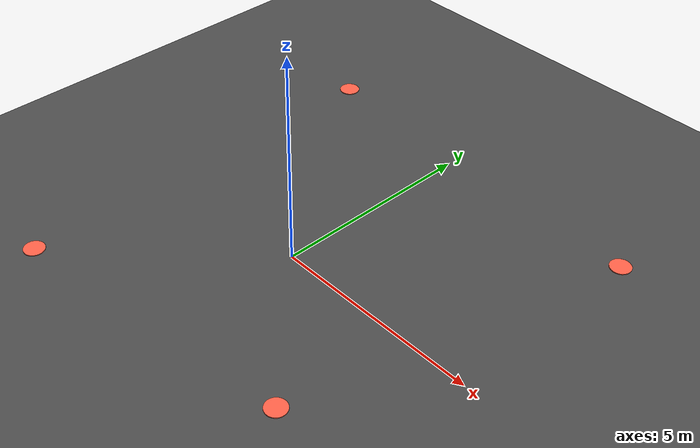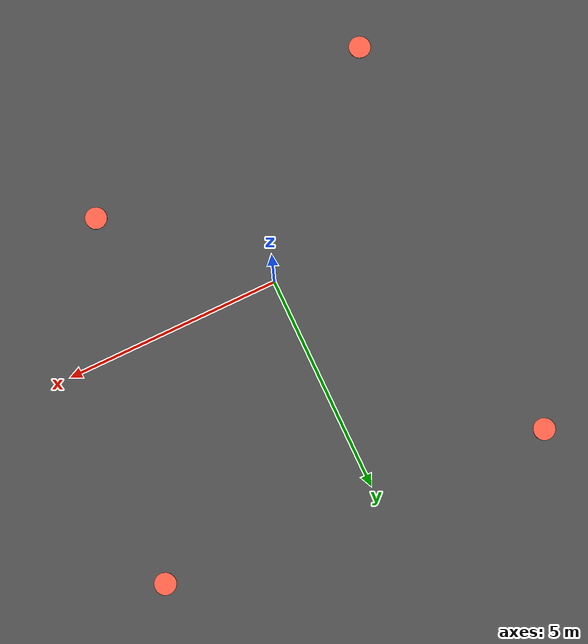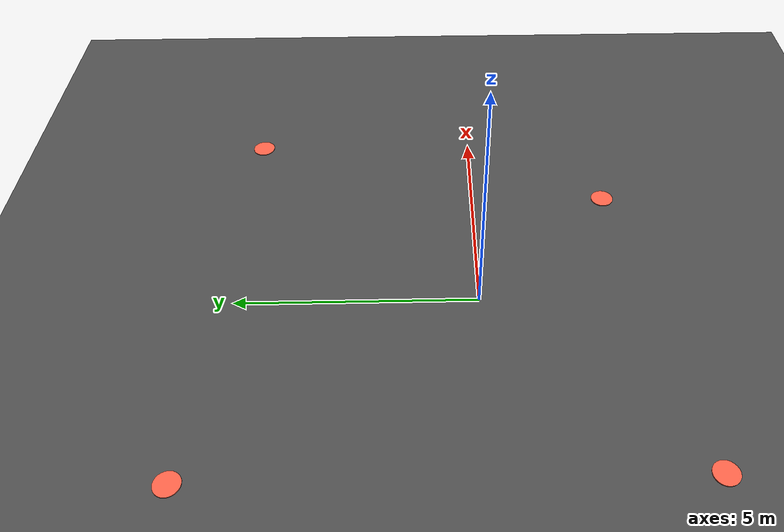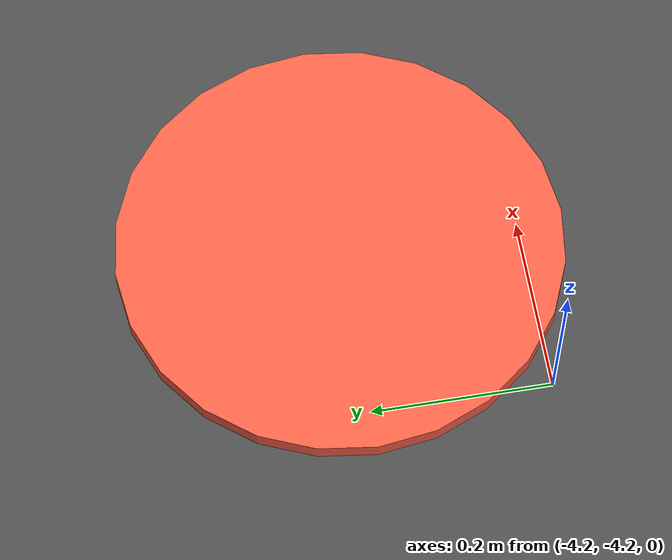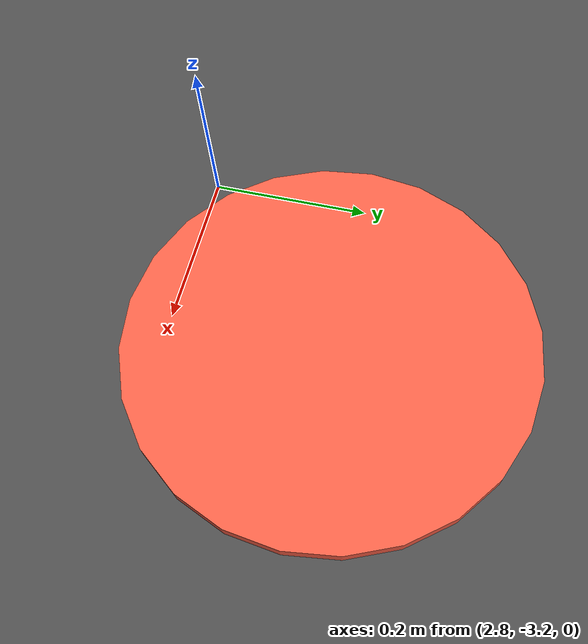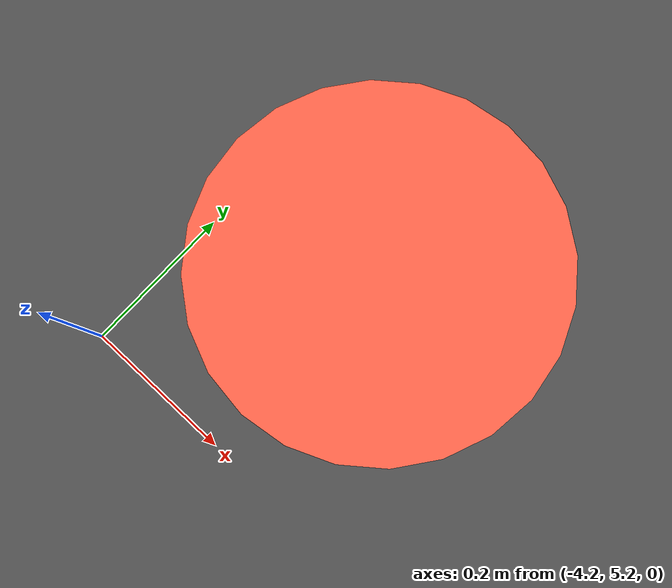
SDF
<?xml version="1.0" ?>
<sdf version='1.4'>
  <world name='default'>

    <physics type='ode'>
      <max_step_size>0.001</max_step_size>
      <real_time_factor>1</real_time_factor>
      <real_time_update_rate>1000</real_time_update_rate>
      <gravity>0 0 -9.8</gravity>
    </physics>

    <spherical_coordinates>
      <surface_model>EARTH_WGS84</surface_model>
      <latitude_deg>0</latitude_deg>
      <longitude_deg>0</longitude_deg>
      <elevation>0</elevation>
      <heading_deg>0</heading_deg>
    </spherical_coordinates>

    <!-- A global light source -->
   <scene>
      <sky>
        <clouds>
          <speed>12</speed>
        </clouds>
      </sky>
   </scene>

   <include>
     <uri>model://sun</uri>
   </include>

  <model name="ground_plane">
    <static>true</static>
    <link name="link">
      <collision name="collision">
        <geometry>
          <plane>
            <normal>0 0 1</normal>
            <size>100 100</size>
          </plane>
        </geometry>
        <surface>
          <friction>
            <ode>
              <mu>100</mu>
              <mu2>50</mu2>
            </ode>
          </friction>
        </surface>
      </collision>
      <visual name="visual">
        <cast_shadows>false</cast_shadows>
        <geometry>
          <plane>
            <normal>0 0 1</normal>
            <size>100 100</size>
          </plane>
        </geometry>
        <material>
          <script>
            <uri>model://asphalt_plane/materials/scripts</uri>
            <uri>model://asphalt_plane/materials/textures</uri>
            <name>vrc/asphalt</name>
          </script>
        </material>
      </visual>
    </link>
  </model>
   <!-- fire location 1 -->
    <model name="fire1" >
      <pose>5 5 0 0 0 0</pose>
      <include>
        <uri>model://virtual_fire</uri>
      </include>
    </model>

    <model name="fire2" >
      <pose>-4 5.5 0 0 0 0</pose>
      <include>
        <uri>model://virtual_fire</uri>
      </include>
    </model>

    <model name="fire3" >
      <pose>3 -3 0 0 0 0</pose>
      <include>
        <uri>model://virtual_fire</uri>
      </include>
    </model>

    <model name="fire4" >
      <pose>-4 -4 0 0 0 0</pose>
      <include>
        <uri>model://virtual_fire</uri>
      </include>
    </model>

  </world>
</sdf>

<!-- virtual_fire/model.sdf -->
<sdf version='1.4'>
  <model name="virtual_fire">
    <link name="link" >
      <pose>0 0 0.01 0 0 0</pose>
      <inertial>
        <mass>0.5</mass>
        <inertia>
          <ixx>0.01</ixx> <ixy>0.0</ixy> <ixz>0.0</ixz>
          <iyy>0.01</iyy> <iyz>0.0</iyz> <izz>0.02</izz>
        </inertia>
      </inertial>
      <collision name="collision">
        <geometry>
          <cylinder>
            <length>0.02</length>
            <radius>0.25</radius>
          </cylinder>
        </geometry>
      </collision>
      <visual name="visual">
        <geometry>
          <cylinder>
            <length>0.02</length>
            <radius>0.25</radius>
          </cylinder>
        </geometry>
        <material>
          <ambient>1.00 0.39 0.28 1</ambient> <!-- tomato -->
          <diffuse>1.00 0.38 0.28 1</diffuse>
          <specular>0.1 0.1 0.1 1</specular>
          <emissive>0 0 0 0</emissive>
        </material>
      </visual>
    </link>
  </model>
</sdf>
